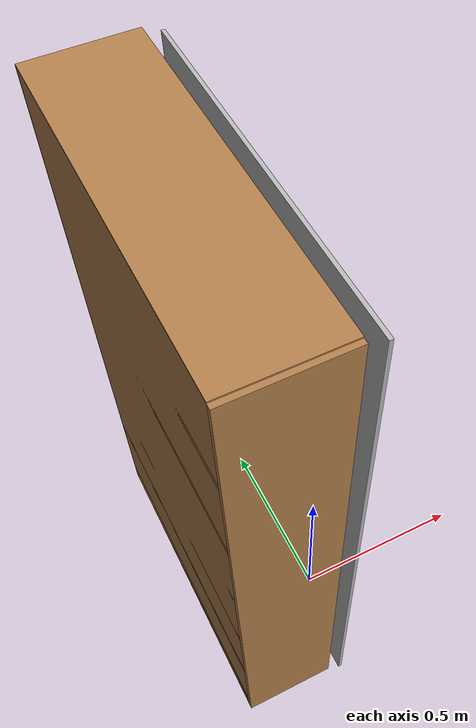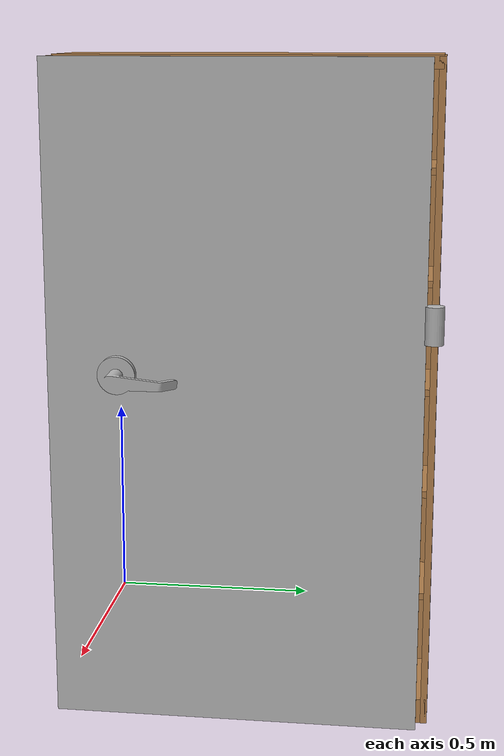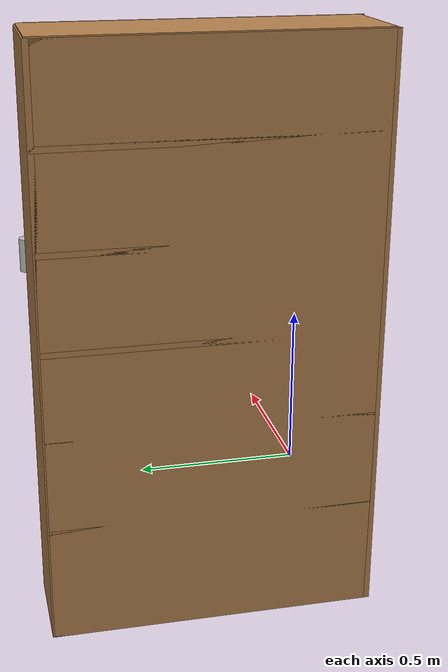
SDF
<?xml version="1.0"?>
<sdf version="1.4">
    <model name="cupboard">
    <link name="link">
        <inertial>
            <mass>10</mass>
            <inertia>
                <ixx>1</ixx>
                <ixy>0</ixy>
                <ixz>0</ixz>
                <iyy>1</iyy>
                <iyz>0</iyz>
                <izz>1</izz>
            </inertia>
        </inertial>
        <visual name="left_board">
            <pose>-0.1475 -0.28 0.898 0 -0 0</pose>
            <geometry>
                <box>
                    <size>0.295 0.018 1.796</size>
                </box>
            </geometry>
            <material>
                <script>
                    <uri>model://base_materials/wood/scripts</uri>
                    <uri>model://base_materials/wood/textures</uri>
                    <name>base_materials/light_wood</name>
                </script>
            </material>
        </visual>
        <collision name="collision_left_board">
            <pose>-0.1475 -0.28 0.898 0 -0 0</pose>
            <geometry>
                <box>
                    <size>0.295 0.018 1.796</size>
                </box>
            </geometry>
            <max_contacts>10</max_contacts>
            <surface>
                <bounce/>
                <friction>
                    <ode/>
                </friction>
                <contact>
                    <ode/>
                </contact>
            </surface>
        </collision>
        <visual name="right_board">
            <pose>-0.1475 0.721 0.898 0 -0 0</pose>
            <geometry>
                <box>
                    <size>0.295 0.018 1.796</size>
                </box>
            </geometry>
            <material>
                <script>
                    <uri>model://base_materials/wood/scripts</uri>
                    <uri>model://base_materials/wood/textures</uri>
                    <name>base_materials/light_wood</name>
                </script>
            </material>
        </visual>
        <collision name="collision_right_board">
            <pose>-0.1475 0.721 0.898 0 -0 0</pose>
            <geometry>
                <box>
                    <size>0.295 0.018 1.796</size>
                </box>
            </geometry>
            <max_contacts>10</max_contacts>
            <surface>
                <bounce/>
                <friction>
                    <ode/>
                </friction>
                <contact>
                    <ode/>
                </contact>
            </surface>
        </collision>
        <visual name="top_board">
            <pose>-0.1475 0.225 1.7825 0 -0 0</pose>
            <geometry>
                <box>
                    <size>0.295 1 0.035</size>
                </box>
            </geometry>
            <material>
                <script>
                    <uri>model://base_materials/wood/scripts</uri>
                    <uri>model://base_materials/wood/textures</uri>
                    <name>base_materials/light_wood</name>
                </script>
            </material>
        </visual>
        <collision name="collision_top_board">
            <pose>-0.1475 0.225 1.7825 0 -0 0</pose>
            <geometry>
                <box>
                    <size>0.295 1 0.035</size>
                </box>
            </geometry>
            <max_contacts>10</max_contacts>
            <surface/>
        </collision>
        <visual name="1st_shelf">
            <pose>-0.162 0.225 1.51 0 -0 0</pose>
            <geometry>
                <box>
                    <size>0.266 1 0.018</size>
                </box>
            </geometry>
            <material>
                <script>
                    <uri>model://base_materials/wood/scripts</uri>
                    <uri>model://base_materials/wood/textures</uri>
                    <name>base_materials/light_wood</name>
                </script>
            </material>
        </visual>
        <collision name="collision_1st_shelf">
            <pose>-0.162 0.225 1.51 0 -0 0</pose>
            <geometry>
                <box>
                    <size>0.266 1 0.018</size>
                </box>
            </geometry>
            <max_contacts>10</max_contacts>
            <surface/>
        </collision>
        <visual name="2nd_shelf">
            <pose>-0.162 0.225 1.22 0 -0 0</pose>
            <geometry>
                <box>
                    <size>0.266 1 0.018</size>
                </box>
            </geometry>
            <material>
                <script>
                    <uri>model://base_materials/wood/scripts</uri>
                    <uri>model://base_materials/wood/textures</uri>
                    <name>base_materials/light_wood</name>
                </script>
            </material>
        </visual>
        <collision name="collision_2nd_shelf">
            <pose>-0.162 0.225 1.22 0 -0 0</pose>
            <geometry>
                <box>
                    <size>0.266 1 0.018</size>
                </box>
            </geometry>
            <max_contacts>10</max_contacts>
            <surface/>
        </collision>
        <visual name="3rd_shelf">
            <pose>-0.162 0.225 0.93 0 -0 0</pose>
            <geometry>
                <box>
                    <size>0.266 1 0.018</size>
                </box>
            </geometry>
            <material>
                <script>
                    <uri>model://base_materials/wood/scripts</uri>
                    <uri>model://base_materials/wood/textures</uri>
                    <name>base_materials/light_wood</name>
                </script>
            </material>
        </visual>
        <collision name="collision_3rd_shelf">
            <pose>-0.162 0.225 0.93 0 -0 0</pose>
            <geometry>
                <box>
                    <size>0.266 1 0.018</size>
                </box>
            </geometry>
            <max_contacts>10</max_contacts>
            <surface/>
        </collision>
        <visual name="4th_shelf">
            <pose>-0.162 0.225 0.65 0 -0 0</pose>
            <geometry>
                <box>
                    <size>0.266 1 0.018</size>
                </box>
            </geometry>
            <material>
                <script>
                    <uri>model://base_materials/wood/scripts</uri>
                    <uri>model://base_materials/wood/textures</uri>
                    <name>base_materials/light_wood</name>
                </script>
            </material>
        </visual>
        <collision name="collision_4th_shelf">
            <pose>-0.162 0.225 0.65 0 -0 0</pose>
            <geometry>
                <box>
                    <size>0.266 1 0.018</size>
                </box>
            </geometry>
            <max_contacts>10</max_contacts>
            <surface/>
        </collision>
        <visual name="5th_shelf">
            <pose>-0.162 0.225 0.36 0 -0 0</pose>
            <geometry>
                <box>
                    <size>0.266 1 0.018</size>
                </box>
            </geometry>
            <material>
                <script>
                    <uri>model://base_materials/wood/scripts</uri>
                    <uri>model://base_materials/wood/textures</uri>
                    <name>base_materials/light_wood</name>
                </script>
            </material>
        </visual>
        <collision name="collision_5th_shelf">
            <pose>-0.162 0.225 0.36 0 -0 0</pose>
            <geometry>
                <box>
                    <size>0.266 1 0.018</size>
                </box>
            </geometry>
            <max_contacts>10</max_contacts>
            <surface/>
        </collision>
        <visual name="bottom_board">
            <pose>-0.1475 0.225 0.035 0 -0 0</pose>
            <geometry>
                <box>
                    <size>0.295 1 0.07</size>
                </box>
            </geometry>
            <material>
                <script>
                    <uri>model://base_materials/wood/scripts</uri>
                    <uri>model://base_materials/wood/textures</uri>
                    <name>base_materials/light_wood</name>
                </script>
            </material>
        </visual>
        <collision name="collision_bottom_board">
            <pose>-0.1475 0.225 0.035 0 -0 0</pose>
            <geometry>
                <box>
                    <size>0.295 1 0.07</size>
                </box>
            </geometry>
            <max_contacts>10</max_contacts>
            <surface/>
        </collision>
        <visual name="back_board">
            <pose>-0.286 0.225 0.898 0 -0 0</pose>
            <geometry>
                <box>
                    <size>0.018 1 1.796</size>
                </box>
            </geometry>
            <material>
                <script>
                    <uri>model://base_materials/wood/scripts</uri>
                    <uri>model://base_materials/wood/textures</uri>
                    <name>base_materials/light_wood</name>
                </script>
            </material>
        </visual>
        <collision name="collision_back_board">
            <pose>-0.286 0.225 0.898 0 -0 0</pose>
            <geometry>
                <box>
                    <size>0.018 1 1.796</size>
                </box>
            </geometry>
            <max_contacts>10</max_contacts>
            <surface/>
        </collision>
        <velocity_decay>
            <linear>0</linear>
            <angular>0</angular>
        </velocity_decay>
        <self_collide>0</self_collide>
        <kinematic>0</kinematic>
        <gravity>1</gravity>
    </link>
    <joint name="fixedlink" type="revolute">
        <parent>default</parent>
        <child>link</child>
        <axis>
            <xyz>1 0 0</xyz>
            <limit>
                <upper>0</upper>
                <lower>0</lower>
            </limit>
        </axis>
    </joint>
    <joint name="fixed" type="revolute">
        <parent>default</parent>
        <child>link</child>
        <axis>
            <xyz>1 0 0</xyz>
            <limit>
                <upper>0</upper>
                <lower>0</lower>
            </limit>
      </axis>
    </joint>
    <link name="hinge">
        <inertial>
            <pose>0.04 0.72 1.125 0 -0 0</pose>
            <mass>0.01</mass>
            <inertia>
                <ixx>1</ixx>
                <ixy>0</ixy>
                <ixz>0</ixz>
                <iyy>100</iyy>
                <iyz>0</iyz>
                <izz>1</izz>
            </inertia>
        </inertial>
        <visual name="visual">
            <pose>0.04 0.72 1.125 0 -0 0</pose>
            <geometry>
                <cylinder>
                    <length>0.1</length>
                    <radius>0.025</radius>
                </cylinder>
            </geometry>
        </visual>
        <gravity>0</gravity>
    </link>
    <joint name="door_hinge" type="fixed">
        <parent>door</parent>
        <child>hinge</child>
        <axis>
            <xyz>1 0 0</xyz>
            <limit>
                <upper>0</upper>
                <lower>0</lower>
            </limit>
      </axis>
    </joint>
    <link name="door">
        <inertial>
            <pose>0.04 0.2 1.125 0 -0 0</pose>
            <mass>1</mass>
            <inertia>
                <ixx>1</ixx>
                <ixy>0</ixy>
                <ixz>0</ixz>
                <iyy>100</iyy>
                <iyz>0</iyz>
                <izz>1</izz>
            </inertia>
        </inertial>
        <visual name="visual">
            <pose>0.04 0.2 0.898 0 -0 1.57</pose>
            <geometry>
                <box>
                    <size>1 0.01 1.796</size>
                </box>
            </geometry>
        </visual>
        <gravity>0</gravity>
    </link>
    <joint name="door_cupboard" type="revolute">
        <parent>link</parent>
        <child>door</child>
        <pose>0 0.72 0 0 -0 0</pose>
        <axis>
            <xyz>0 0 1</xyz>
            <limit>
                <effort>15</effort>
                <lower>0</lower>
                <upper>1.57</upper>
                <velocity>1</velocity>
            </limit>

        </axis>
    </joint>
    <pose>-0.016098 0.106002 -0.376993 0 -0 0</pose>
    <link name="handle">
        <gravity>0</gravity>
        <collision name="collision">
            <geometry>
                <mesh>
                    <uri>model://door_handle/meshes/door_handle.dae</uri>
                </mesh>
            </geometry>
        </collision>
        <visual name="visual">
            <geometry>
                <mesh>
                    <uri>model://door_handle/meshes/door_handle.dae</uri>
                </mesh>
            </geometry>
        </visual>
        <pose>0.0598 -0.106008 0.976993 1.58914 0.053231 1.57168</pose>
    </link>
    <joint name="door_JOINT_0" type="revolute">
        <parent>door</parent>
        <child>handle</child>
        <pose>0 0 0 0 -0 0</pose>
        <axis>
            <xyz>1 0 0</xyz>
            <limit>
                <effort>15</effort>
                <lower>-0.75</lower>
                <upper>0.75</upper>
                <velocity>1</velocity>
            </limit>
        </axis>
        <physics>
            <ode>
                <limit>
                    <cfm>0</cfm>
                    <erp>0.2</erp>
                </limit>
                <suspension>
                    <cfm>0</cfm>
                    <erp>0.2</erp>
                </suspension>
            </ode>
        </physics>
    </joint>
    <static>0</static>
    <allow_auto_disable>1</allow_auto_disable>
</model>
</sdf>
